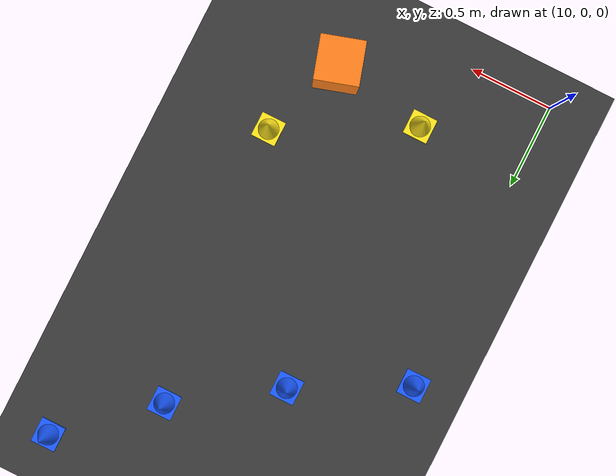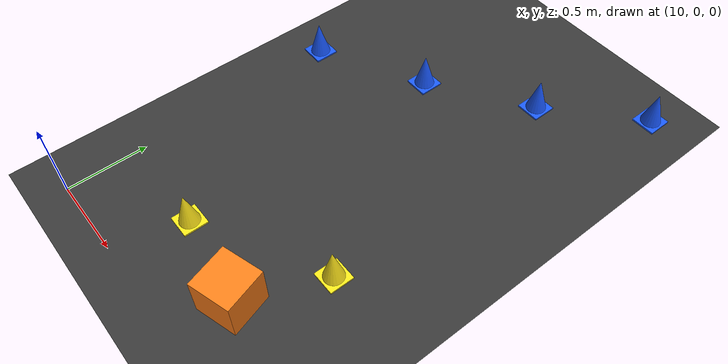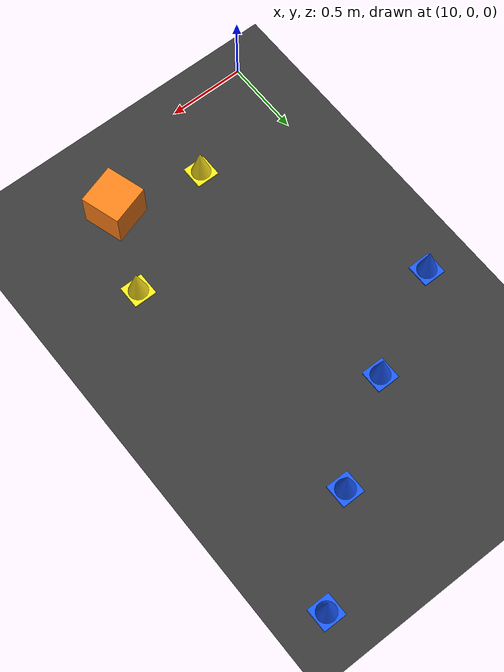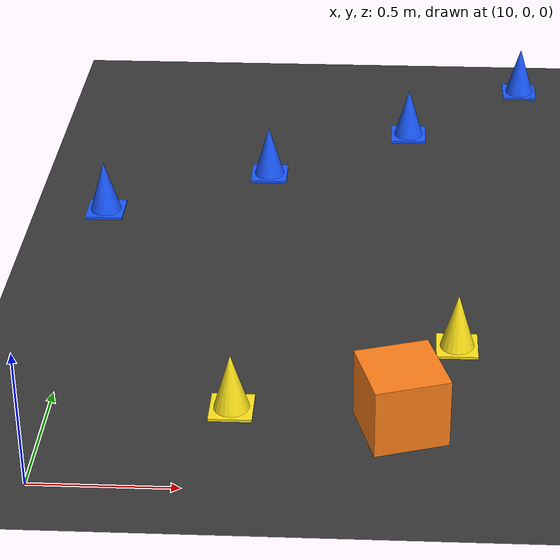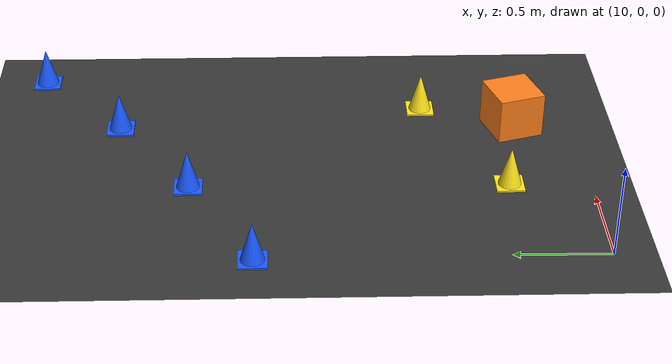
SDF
<sdf version="1.8">
 <world name="track_with_cones">
  <model name="ground_plane">
   <static>true</static>
   <link name="link">
    <collision name="collision">
     <geometry><plane><normal>0 0 1</normal><size>100 100</size></plane></geometry>
     <surface><friction><ode><mu>100</mu><mu2>100</mu2></ode></friction></surface>
    </collision>
    <visual name="visual">
     <geometry><plane><normal>0 0 1</normal><size>100 100</size></plane></geometry>
     <material>
      <ambient>0.22 0.22 0.22 1</ambient>
      <diffuse>0.22 0.22 0.22 1</diffuse>
      <specular>0.05 0.05 0.05 1</specular>
     </material>
    </visual>
   </link>
  </model>
  <model name="noise_poly_orange_3d_3">
   <static>true</static>
   <pose>11.2 0.35 0.125 0 0 0.3</pose>
   <link name="link">
    <visual name="visual">
     <geometry><box><size>0.26 0.26 0.25</size></box></geometry>
     <material>
      <ambient>0.95 0.45 0.05 1.0</ambient>
      <diffuse>1.00 0.50 0.10 1.0</diffuse>
      <specular>0.3 0.3 0.3 1.0</specular>
     </material>
    </visual>
    <collision name="collision"><geometry><box><size>0.26 0.26 0.25</size></box></geometry></collision>
   </link>
  </model>
  <model name="cone_blue_13">
   <static>true</static>
   <pose>9.9821 1.7899 0.11 0 0 0</pose>
   <link name="link">
    <visual name="base_visual">
     <pose>0 0 -0.105 0 0 0</pose>
     <geometry><box><size>0.15 0.15 0.01</size></box></geometry>
     <material>
      <ambient>0.05 0.25 0.95 1.0</ambient>
      <diffuse>0.10 0.35 1.00 1.0</diffuse>
      <specular>0.2 0.2 0.2 1.0</specular>
     </material>
    </visual>
    <visual name="cone_visual">
     <geometry><cone><radius>0.065</radius><length>0.22</length></cone></geometry>
     <material>
      <ambient>0.05 0.25 0.95 1.0</ambient>
      <diffuse>0.10 0.35 1.00 1.0</diffuse>
      <specular>0.2 0.2 0.2 1.0</specular>
     </material>
    </visual>
    <collision name="collision">
     <geometry><cylinder><radius>0.065</radius><length>0.22</length></cylinder></geometry>
    </collision>
   </link>
  </model>
  <model name="cone_yellow_13">
   <static>true</static>
   <pose>10.6236 0.4340 0.11 0 0 0</pose>
   <link name="link">
    <visual name="base_visual">
     <pose>0 0 -0.105 0 0 0</pose>
     <geometry><box><size>0.15 0.15 0.01</size></box></geometry>
     <material>
      <ambient>0.95 0.85 0.05 1.0</ambient>
      <diffuse>1.00 0.90 0.10 1.0</diffuse>
      <specular>0.2 0.2 0.2 1.0</specular>
     </material>
    </visual>
    <visual name="cone_visual">
     <geometry><cone><radius>0.065</radius><length>0.22</length></cone></geometry>
     <material>
      <ambient>0.95 0.85 0.05 1.0</ambient>
      <diffuse>1.00 0.90 0.10 1.0</diffuse>
      <specular>0.2 0.2 0.2 1.0</specular>
     </material>
    </visual>
    <collision name="collision">
     <geometry><cylinder><radius>0.065</radius><length>0.22</length></cylinder></geometry>
    </collision>
   </link>
  </model>
  <model name="cone_blue_14">
   <static>true</static>
   <pose>10.6308 2.1306 0.11 0 0 0</pose>
   <link name="link">
    <visual name="base_visual">
     <pose>0 0 -0.105 0 0 0</pose>
     <geometry><box><size>0.15 0.15 0.01</size></box></geometry>
     <material>
      <ambient>0.05 0.25 0.95 1.0</ambient>
      <diffuse>0.10 0.35 1.00 1.0</diffuse>
      <specular>0.2 0.2 0.2 1.0</specular>
     </material>
    </visual>
    <visual name="cone_visual">
     <geometry><cone><radius>0.065</radius><length>0.22</length></cone></geometry>
     <material>
      <ambient>0.05 0.25 0.95 1.0</ambient>
      <diffuse>0.10 0.35 1.00 1.0</diffuse>
      <specular>0.2 0.2 0.2 1.0</specular>
     </material>
    </visual>
    <collision name="collision">
     <geometry><cylinder><radius>0.065</radius><length>0.22</length></cylinder></geometry>
    </collision>
   </link>
  </model>
  <model name="cone_yellow_14">
   <static>true</static>
   <pose>11.3999 0.8428 0.11 0 0 0</pose>
   <link name="link">
    <visual name="base_visual">
     <pose>0 0 -0.105 0 0 0</pose>
     <geometry><box><size>0.15 0.15 0.01</size></box></geometry>
     <material>
      <ambient>0.95 0.85 0.05 1.0</ambient>
      <diffuse>1.00 0.90 0.10 1.0</diffuse>
      <specular>0.2 0.2 0.2 1.0</specular>
     </material>
    </visual>
    <visual name="cone_visual">
     <geometry><cone><radius>0.065</radius><length>0.22</length></cone></geometry>
     <material>
      <ambient>0.95 0.85 0.05 1.0</ambient>
      <diffuse>1.00 0.90 0.10 1.0</diffuse>
      <specular>0.2 0.2 0.2 1.0</specular>
     </material>
    </visual>
    <collision name="collision">
     <geometry><cylinder><radius>0.065</radius><length>0.22</length></cylinder></geometry>
    </collision>
   </link>
  </model>
  <model name="cone_blue_15">
   <static>true</static>
   <pose>11.2218 2.5278 0.11 0 0 0</pose>
   <link name="link">
    <visual name="base_visual">
     <pose>0 0 -0.105 0 0 0</pose>
     <geometry><box><size>0.15 0.15 0.01</size></box></geometry>
     <material>
      <ambient>0.05 0.25 0.95 1.0</ambient>
      <diffuse>0.10 0.35 1.00 1.0</diffuse>
      <specular>0.2 0.2 0.2 1.0</specular>
     </material>
    </visual>
    <visual name="cone_visual">
     <geometry><cone><radius>0.065</radius><length>0.22</length></cone></geometry>
     <material>
      <ambient>0.05 0.25 0.95 1.0</ambient>
      <diffuse>0.10 0.35 1.00 1.0</diffuse>
      <specular>0.2 0.2 0.2 1.0</specular>
     </material>
    </visual>
    <collision name="collision">
     <geometry><cylinder><radius>0.065</radius><length>0.22</length></cylinder></geometry>
    </collision>
   </link>
  </model>
  <model name="cone_blue_16">
   <static>true</static>
   <pose>11.7374 2.9900 0.11 0 0 0</pose>
   <link name="link">
    <visual name="base_visual">
     <pose>0 0 -0.105 0 0 0</pose>
     <geometry><box><size>0.15 0.15 0.01</size></box></geometry>
     <material>
      <ambient>0.05 0.25 0.95 1.0</ambient>
      <diffuse>0.10 0.35 1.00 1.0</diffuse>
      <specular>0.2 0.2 0.2 1.0</specular>
     </material>
    </visual>
    <visual name="cone_visual">
     <geometry><cone><radius>0.065</radius><length>0.22</length></cone></geometry>
     <material>
      <ambient>0.05 0.25 0.95 1.0</ambient>
      <diffuse>0.10 0.35 1.00 1.0</diffuse>
      <specular>0.2 0.2 0.2 1.0</specular>
     </material>
    </visual>
    <collision name="collision">
     <geometry><cylinder><radius>0.065</radius><length>0.22</length></cylinder></geometry>
    </collision>
   </link>
  </model>
 </world>
</sdf>
